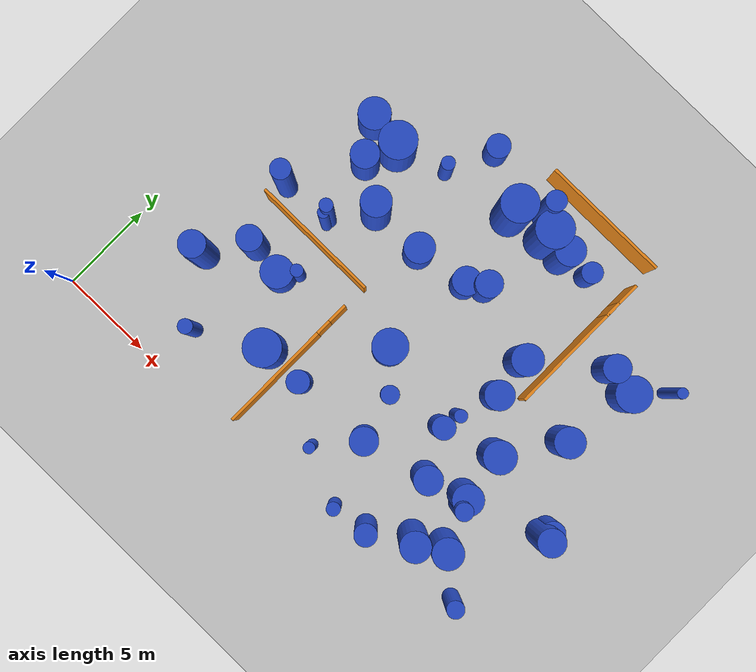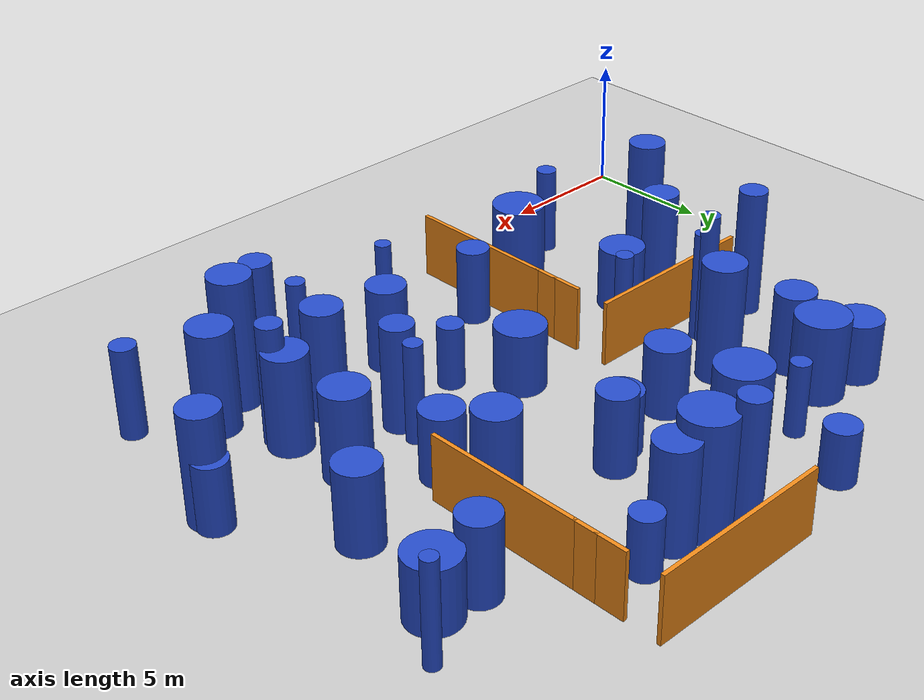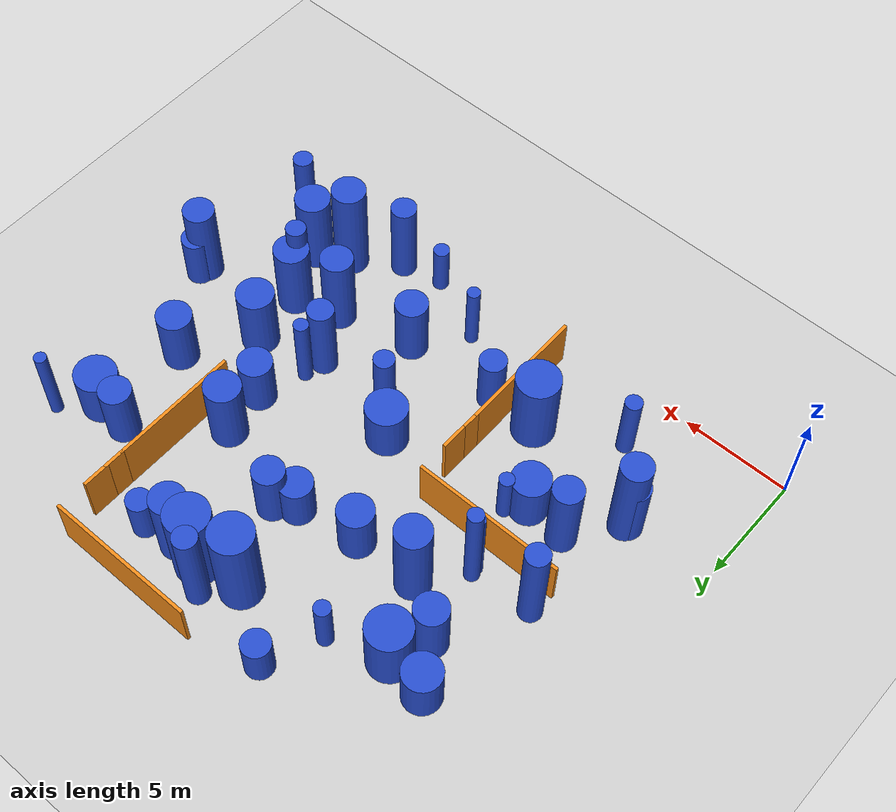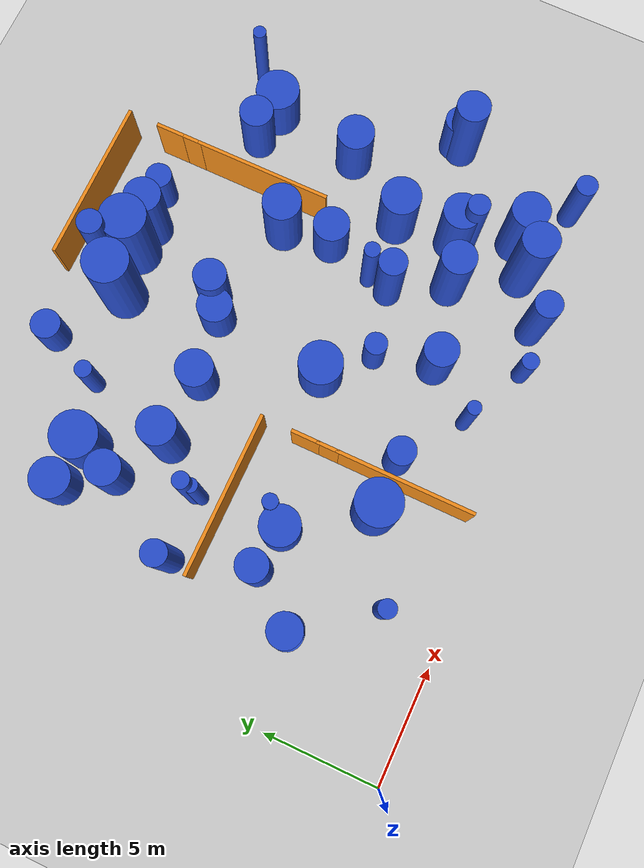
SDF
<sdf version="1.6">
 <world name="default">
  <model name="ground_plane">
   <static>1</static>
   <link name="link">
    <collision name="collision">
     <geometry><plane><normal>0 0 1</normal><size>100 100</size></plane></geometry>
     <surface><friction><ode><mu>100</mu><mu2>50</mu2></ode></friction></surface>
    </collision>
    <visual name="visual">
     <cast_shadows>0</cast_shadows>
     <geometry><plane><normal>0 0 1</normal><size>100 100</size></plane></geometry>
     <material>
      <script><uri>file://media/materials/scripts/gazebo.material</uri><name>Gazebo/Grey</name></script>
     </material>
    </visual>
   </link>
  </model>
  <model name="0">
   <static>0</static>
   <link name="link">
    <inertial>
     <mass>2</mass>
     <inertia><ixx>1.44488</ixx><ixy>0</ixy><ixz>0</ixz><iyy>1.44488</iyy><iyz>0</iyz><izz>0.600062</izz></inertia>
    </inertial>
    <collision name="collision">
     <geometry><cylinder><length>2.6209</length><radius>0.774637</radius></cylinder></geometry>
     <surface><contact><collide_without_contact>1</collide_without_contact></contact></surface>
    </collision>
    <visual name="visual">
     <geometry><cylinder><length>2.6209</length><radius>0.774637</radius></cylinder></geometry>
     <material>
      <script><uri>file://media/materials/scripts/gazebo.material</uri><name>Gazebo/Blue</name></script>
     </material>
    </visual>
    <gravity>0</gravity>
   </link>
   <pose>19.6803 11.0786 1.31045 0 -0 0</pose>
  </model>
  <model name="5">
   <static>0</static>
   <link name="link">
    <inertial>
     <mass>2</mass>
     <inertia><ixx>1.15559</ixx><ixy>0</ixy><ixz>0</ixz><iyy>1.15559</iyy><iyz>0</iyz><izz>0.571928</izz></inertia>
    </inertial>
    <collision name="collision">
     <geometry><cylinder><length>2.28424</length><radius>0.756259</radius></cylinder></geometry>
     <surface><contact><collide_without_contact>1</collide_without_contact></contact></surface>
    </collision>
    <visual name="visual">
     <geometry><cylinder><length>2.28424</length><radius>0.756259</radius></cylinder></geometry>
     <material>
      <script><uri>file://media/materials/scripts/gazebo.material</uri><name>Gazebo/Blue</name></script>
     </material>
    </visual>
    <gravity>0</gravity>
   </link>
   <pose>14.5568 14.0318 1.14212 0 -0 0</pose>
  </model>
  <model name="20">
   <static>0</static>
   <link name="link">
    <inertial>
     <mass>2</mass>
     <inertia>
      <ixx>0.985313</ixx>
      <ixy>0</ixy>
      <ixz>0</ixz>
      <iyy>0.985313</iyy>
      <iyz>0</iyz>
      <izz>0.312388</izz>
     </inertia>
    </inertial>
    <collision name="collision">
     <geometry><cylinder><length>2.23041</length><radius>0.558917</radius></cylinder></geometry>
     <surface><contact><collide_without_contact>1</collide_without_contact></contact></surface>
    </collision>
    <visual name="visual">
     <geometry><cylinder><length>2.23041</length><radius>0.558917</radius></cylinder></geometry>
     <material>
      <script><uri>file://media/materials/scripts/gazebo.material</uri><name>Gazebo/Blue</name></script>
     </material>
    </visual>
    <gravity>0</gravity>
   </link>
   <pose>18.7341 18.7242 1.1152 0 -0 0</pose>
  </model>
  <model name="23">
   <static>0</static>
   <link name="link">
    <inertial>
     <mass>2</mass>
     <inertia><ixx>2.07027</ixx><ixy>0</ixy><ixz>0</ixz><iyy>2.07027</iyy><iyz>0</iyz><izz>0.208934</izz></inertia>
    </inertial>
    <collision name="collision">
     <geometry><cylinder><length>3.43436</length><radius>0.457093</radius></cylinder></geometry>
     <surface><contact><collide_without_contact>1</collide_without_contact></contact></surface>
    </collision>
    <visual name="visual">
     <geometry><cylinder><length>3.43436</length><radius>0.457093</radius></cylinder></geometry>
     <material>
      <script><uri>file://media/materials/scripts/gazebo.material</uri><name>Gazebo/Blue</name></script>
     </material>
    </visual>
    <gravity>0</gravity>
   </link>
   <pose>25.3111 2.1227 1.71718 0 -0 0</pose>
  </model>
  <model name="24">
   <static>0</static>
   <link name="link">
    <inertial>
     <mass>2</mass>
     <inertia><ixx>1.15813</ixx><ixy>0</ixy><ixz>0</ixz><iyy>1.15813</iyy><iyz>0</iyz><izz>0.112947</izz></inertia>
    </inertial>
    <collision name="collision">
     <geometry><cylinder><length>2.57098</length><radius>0.336075</radius></cylinder></geometry>
     <surface><contact><collide_without_contact>1</collide_without_contact></contact></surface>
    </collision>
    <visual name="visual">
     <geometry><cylinder><length>2.57098</length><radius>0.336075</radius></cylinder></geometry>
     <material>
      <script><uri>file://media/materials/scripts/gazebo.material</uri><name>Gazebo/Blue</name></script>
     </material>
    </visual>
    <gravity>0</gravity>
   </link>
   <pose>8.17971 8.45153 1.28549 0 -0 0</pose>
  </model>
  <model name="43">
   <static>0</static>
   <link name="link">
    <inertial>
     <mass>2</mass>
     <inertia><ixx>2.22072</ixx><ixy>0</ixy><ixz>0</ixz><iyy>2.22072</iyy><iyz>0</iyz><izz>0.71958</izz></inertia>
    </inertial>
    <collision name="collision">
     <geometry><cylinder><length>3.3415</length><radius>0.84828</radius></cylinder></geometry>
     <surface><contact><collide_without_contact>1</collide_without_contact></contact></surface>
    </collision>
    <visual name="visual">
     <geometry><cylinder><length>3.3415</length><radius>0.84828</radius></cylinder></geometry>
     <material>
      <script><uri>file://media/materials/scripts/gazebo.material</uri><name>Gazebo/Blue</name></script>
     </material>
    </visual>
    <gravity>0</gravity>
   </link>
   <pose>21.7391 8.87798 1.67075 0 -0 0</pose>
  </model>
  <model name="44">
   <static>0</static>
   <link name="link">
    <inertial>
     <mass>2</mass>
     <inertia>
      <ixx>0.938137</ixx>
      <ixy>0</ixy>
      <ixz>0</ixz>
      <iyy>0.938137</iyy>
      <iyz>0</iyz>
      <izz>0.405193</izz>
     </inertia>
    </inertial>
    <collision name="collision">
     <geometry><cylinder><length>2.10077</length><radius>0.636547</radius></cylinder></geometry>
     <surface><contact><collide_without_contact>1</collide_without_contact></contact></surface>
    </collision>
    <visual name="visual">
     <geometry><cylinder><length>2.10077</length><radius>0.636547</radius></cylinder></geometry>
     <material>
      <script><uri>file://media/materials/scripts/gazebo.material</uri><name>Gazebo/Blue</name></script>
     </material>
    </visual>
    <gravity>0</gravity>
   </link>
   <pose>10.9429 20.0317 1.05039 0 -0 0</pose>
  </model>
  <model name="47">
   <static>0</static>
   <link name="link">
    <inertial>
     <mass>2</mass>
     <inertia><ixx>3.1155</ixx><ixy>0</ixy><ixz>0</ixz><iyy>3.1155</iyy><iyz>0</iyz><izz>0.511303</izz></inertia>
    </inertial>
    <collision name="collision">
     <geometry><cylinder><length>4.14235</length><radius>0.715055</radius></cylinder></geometry>
     <surface><contact><collide_without_contact>1</collide_without_contact></contact></surface>
    </collision>
    <visual name="visual">
     <geometry><cylinder><length>4.14235</length><radius>0.715055</radius></cylinder></geometry>
     <material>
      <script><uri>file://media/materials/scripts/gazebo.material</uri><name>Gazebo/Blue</name></script>
     </material>
    </visual>
    <gravity>0</gravity>
   </link>
   <pose>26.2492 7.67174 2.07118 0 -0 0</pose>
  </model>
  <model name="48">
   <static>0</static>
   <link name="link">
    <inertial>
     <mass>2</mass>
     <inertia><ixx>2.00723</ixx><ixy>0</ixy><ixz>0</ixz><iyy>2.00723</iyy><iyz>0</iyz><izz>0.44952</izz></inertia>
    </inertial>
    <collision name="collision">
     <geometry><cylinder><length>3.27029</length><radius>0.670462</radius></cylinder></geometry>
     <surface><contact><collide_without_contact>1</collide_without_contact></contact></surface>
    </collision>
    <visual name="visual">
     <geometry><cylinder><length>3.27029</length><radius>0.670462</radius></cylinder></geometry>
     <material>
      <script><uri>file://media/materials/scripts/gazebo.material</uri><name>Gazebo/Blue</name></script>
     </material>
    </visual>
    <gravity>0</gravity>
   </link>
   <pose>3.91397 5.71334 1.63514 0 -0 0</pose>
  </model>
  <model name="50">
   <static>0</static>
   <link name="link">
    <inertial>
     <mass>2</mass>
     <inertia><ixx>4.36449</ixx><ixy>0</ixy><ixz>0</ixz><iyy>4.36449</iyy><iyz>0</iyz><izz>0.596492</izz></inertia>
    </inertial>
    <collision name="collision">
     <geometry><cylinder><length>4.93938</length><radius>0.772329</radius></cylinder></geometry>
     <surface><contact><collide_without_contact>1</collide_without_contact></contact></surface>
    </collision>
    <visual name="visual">
     <geometry><cylinder><length>4.93938</length><radius>0.772329</radius></cylinder></geometry>
     <material>
      <script><uri>file://media/materials/scripts/gazebo.material</uri><name>Gazebo/Blue</name></script>
     </material>
    </visual>
    <gravity>0</gravity>
   </link>
   <pose>21.6401 3.0206 2.46969 0 -0 0</pose>
  </model>
  <model name="53">
   <static>0</static>
   <link name="link">
    <inertial>
     <mass>2</mass>
     <inertia><ixx>4.1614</ixx><ixy>0</ixy><ixz>0</ixz><iyy>4.1614</iyy><iyz>0</iyz><izz>0.483095</izz></inertia>
    </inertial>
    <collision name="collision">
     <geometry><cylinder><length>4.84965</length><radius>0.695051</radius></cylinder></geometry>
     <surface><contact><collide_without_contact>1</collide_without_contact></contact></surface>
    </collision>
    <visual name="visual">
     <geometry><cylinder><length>4.84965</length><radius>0.695051</radius></cylinder></geometry>
     <material>
      <script><uri>file://media/materials/scripts/gazebo.material</uri><name>Gazebo/Blue</name></script>
     </material>
    </visual>
    <gravity>0</gravity>
   </link>
   <pose>4.01536 5.78977 2.42483 0 -0 0</pose>
  </model>
  <model name="57">
   <static>0</static>
   <link name="link">
    <inertial>
     <mass>2</mass>
     <inertia><ixx>1.34468</ixx><ixy>0</ixy><ixz>0</ixz><iyy>1.34468</iyy><iyz>0</iyz><izz>0.738276</izz></inertia>
    </inertial>
    <collision name="collision">
     <geometry><cylinder><length>2.41935</length><radius>0.85923</radius></cylinder></geometry>
     <surface><contact><collide_without_contact>1</collide_without_contact></contact></surface>
    </collision>
    <visual name="visual">
     <geometry><cylinder><length>2.41935</length><radius>0.85923</radius></cylinder></geometry>
     <material>
      <script><uri>file://media/materials/scripts/gazebo.material</uri><name>Gazebo/Blue</name></script>
     </material>
    </visual>
    <gravity>0</gravity>
   </link>
   <pose>7.50045 7.71689 1.20967 0 -0 0</pose>
  </model>
  <model name="79">
   <static>0</static>
   <link name="link">
    <inertial>
     <mass>2</mass>
     <inertia><ixx>4.22648</ixx><ixy>0</ixy><ixz>0</ixz><iyy>4.22648</iyy><iyz>0</iyz><izz>0.120914</izz></inertia>
    </inertial>
    <collision name="collision">
     <geometry><cylinder><length>4.99961</length><radius>0.347727</radius></cylinder></geometry>
     <surface><contact><collide_without_contact>1</collide_without_contact></contact></surface>
    </collision>
    <visual name="visual">
     <geometry><cylinder><length>4.99961</length><radius>0.347727</radius></cylinder></geometry>
     <material>
      <script><uri>file://media/materials/scripts/gazebo.material</uri><name>Gazebo/Blue</name></script>
     </material>
    </visual>
    <gravity>0</gravity>
   </link>
   <pose>7.28848 11.5718 2.49981 0 -0 0</pose>
  </model>
  <model name="85">
   <static>0</static>
   <link name="link">
    <inertial>
     <mass>2</mass>
     <inertia><ixx>1.35185</ixx><ixy>0</ixy><ixz>0</ixz><iyy>1.35185</iyy><iyz>0</iyz><izz>0.134537</izz></inertia>
    </inertial>
    <collision name="collision">
     <geometry><cylinder><length>2.77624</length><radius>0.366793</radius></cylinder></geometry>
     <surface><contact><collide_without_contact>1</collide_without_contact></contact></surface>
    </collision>
    <visual name="visual">
     <geometry><cylinder><length>2.77624</length><radius>0.366793</radius></cylinder></geometry>
     <material>
      <script><uri>file://media/materials/scripts/gazebo.material</uri><name>Gazebo/Blue</name></script>
     </material>
    </visual>
    <gravity>0</gravity>
   </link>
   <pose>9.80805 17.5106 1.38812 0 -0 0</pose>
  </model>
  <model name="93">
   <static>0</static>
   <link name="link">
    <inertial>
     <mass>2</mass>
     <inertia><ixx>2.55649</ixx><ixy>0</ixy><ixz>0</ixz><iyy>2.55649</iyy><iyz>0</iyz><izz>0.635989</izz></inertia>
    </inertial>
    <collision name="collision">
     <geometry><cylinder><length>3.66483</length><radius>0.797489</radius></cylinder></geometry>
     <surface><contact><collide_without_contact>1</collide_without_contact></contact></surface>
    </collision>
    <visual name="visual">
     <geometry><cylinder><length>3.66483</length><radius>0.797489</radius></cylinder></geometry>
     <material>
      <script><uri>file://media/materials/scripts/gazebo.material</uri><name>Gazebo/Blue</name></script>
     </material>
    </visual>
    <gravity>0</gravity>
   </link>
   <pose>22.0357 6.31783 1.83241 0 -0 0</pose>
  </model>
  <model name="94">
   <static>0</static>
   <link name="link">
    <inertial>
     <mass>2</mass>
     <inertia><ixx>2.06501</ixx><ixy>0</ixy><ixz>0</ixz><iyy>2.06501</iyy><iyz>0</iyz><izz>0.98519</izz></inertia>
    </inertial>
    <collision name="collision">
     <geometry><cylinder><length>3.07156</length><radius>0.992567</radius></cylinder></geometry>
     <surface><contact><collide_without_contact>1</collide_without_contact></contact></surface>
    </collision>
    <visual name="visual">
     <geometry><cylinder><length>3.07156</length><radius>0.992567</radius></cylinder></geometry>
     <material>
      <script><uri>file://media/materials/scripts/gazebo.material</uri><name>Gazebo/Blue</name></script>
     </material>
    </visual>
    <gravity>0</gravity>
   </link>
   <pose>7.2758 16.5381 1.53578 0 -0 0</pose>
  </model>
  <model name="100">
   <static>0</static>
   <link name="link">
    <inertial>
     <mass>2</mass>
     <inertia><ixx>2.93556</ixx><ixy>0</ixy><ixz>0</ixz><iyy>2.93556</iyy><iyz>0</iyz><izz>0.950215</izz></inertia>
    </inertial>
    <collision name="collision">
     <geometry><cylinder><length>3.84223</length><radius>0.97479</radius></cylinder></geometry>
     <surface><contact><collide_without_contact>1</collide_without_contact></contact></surface>
    </collision>
    <visual name="visual">
     <geometry><cylinder><length>3.84223</length><radius>0.97479</radius></cylinder></geometry>
     <material>
      <script><uri>file://media/materials/scripts/gazebo.material</uri><name>Gazebo/Blue</name></script>
     </material>
    </visual>
    <gravity>0</gravity>
   </link>
   <pose>9.77484 4.57921 1.92111 0 -0 0</pose>
  </model>
  <model name="102">
   <static>0</static>
   <link name="link">
    <inertial>
     <mass>2</mass>
     <inertia><ixx>1.41837</ixx><ixy>0</ixy><ixz>0</ixz><iyy>1.41837</iyy><iyz>0</iyz><izz>0.884479</izz></inertia>
    </inertial>
    <collision name="collision">
     <geometry><cylinder><length>2.42008</length><radius>0.940468</radius></cylinder></geometry>
     <surface><contact><collide_without_contact>1</collide_without_contact></contact></surface>
    </collision>
    <visual name="visual">
     <geometry><cylinder><length>2.42008</length><radius>0.940468</radius></cylinder></geometry>
     <material>
      <script><uri>file://media/materials/scripts/gazebo.material</uri><name>Gazebo/Blue</name></script>
     </material>
    </visual>
    <gravity>0</gravity>
   </link>
   <pose>14.1371 9.01659 1.21004 0 -0 0</pose>
  </model>
  <model name="104">
   <static>0</static>
   <link name="link">
    <inertial>
     <mass>2</mass>
     <inertia><ixx>1.39177</ixx><ixy>0</ixy><ixz>0</ixz><iyy>1.39177</iyy><iyz>0</iyz><izz>0.899716</izz></inertia>
    </inertial>
    <collision name="collision">
     <geometry><cylinder><length>2.37729</length><radius>0.948534</radius></cylinder></geometry>
     <surface><contact><collide_without_contact>1</collide_without_contact></contact></surface>
    </collision>
    <visual name="visual">
     <geometry><cylinder><length>2.37729</length><radius>0.948534</radius></cylinder></geometry>
     <material>
      <script><uri>file://media/materials/scripts/gazebo.material</uri><name>Gazebo/Blue</name></script>
     </material>
    </visual>
    <gravity>0</gravity>
   </link>
   <pose>24.4132 15.8053 1.18864 0 -0 0</pose>
  </model>
  <model name="108">
   <static>0</static>
   <link name="link">
    <inertial>
     <mass>2</mass>
     <inertia><ixx>1.98997</ixx><ixy>0</ixy><ixz>0</ixz><iyy>1.98997</iyy><iyz>0</iyz><izz>0.149514</izz></inertia>
    </inertial>
    <collision name="collision">
     <geometry><cylinder><length>3.38988</length><radius>0.38667</radius></cylinder></geometry>
     <surface><contact><collide_without_contact>1</collide_without_contact></contact></surface>
    </collision>
    <visual name="visual">
     <geometry><cylinder><length>3.38988</length><radius>0.38667</radius></cylinder></geometry>
     <material>
      <script><uri>file://media/materials/scripts/gazebo.material</uri><name>Gazebo/Blue</name></script>
     </material>
    </visual>
    <gravity>0</gravity>
   </link>
   <pose>6.31891 2.67076 1.69494 0 -0 0</pose>
  </model>
  <model name="109">
   <static>0</static>
   <link name="link">
    <inertial>
     <mass>2</mass>
     <inertia><ixx>1.81505</ixx><ixy>0</ixy><ixz>0</ixz><iyy>1.81505</iyy><iyz>0</iyz><izz>0.637128</izz></inertia>
    </inertial>
    <collision name="collision">
     <geometry><cylinder><length>2.99649</length><radius>0.798203</radius></cylinder></geometry>
     <surface><contact><collide_without_contact>1</collide_without_contact></contact></surface>
    </collision>
    <visual name="visual">
     <geometry><cylinder><length>2.99649</length><radius>0.798203</radius></cylinder></geometry>
     <material>
      <script><uri>file://media/materials/scripts/gazebo.material</uri><name>Gazebo/Blue</name></script>
     </material>
    </visual>
    <gravity>0</gravity>
   </link>
   <pose>23.7206 11.8082 1.49824 0 -0 0</pose>
  </model>
  <model name="111">
   <static>0</static>
   <link name="link">
    <inertial>
     <mass>2</mass>
     <inertia><ixx>1.74581</ixx><ixy>0</ixy><ixz>0</ixz><iyy>1.74581</iyy><iyz>0</iyz><izz>0.527772</izz></inertia>
    </inertial>
    <collision name="collision">
     <geometry><cylinder><length>2.98187</length><radius>0.726479</radius></cylinder></geometry>
     <surface><contact><collide_without_contact>1</collide_without_contact></contact></surface>
    </collision>
    <visual name="visual">
     <geometry><cylinder><length>2.98187</length><radius>0.726479</radius></cylinder></geometry>
     <material>
      <script><uri>file://media/materials/scripts/gazebo.material</uri><name>Gazebo/Blue</name></script>
     </material>
    </visual>
    <gravity>0</gravity>
   </link>
   <pose>22.8404 16.0415 1.49093 0 -0 0</pose>
  </model>
  <model name="117">
   <static>0</static>
   <link name="link">
    <inertial>
     <mass>2</mass>
     <inertia><ixx>3.02417</ixx><ixy>0</ixy><ixz>0</ixz><iyy>3.02417</iyy><iyz>0</iyz><izz>0.335481</izz></inertia>
    </inertial>
    <collision name="collision">
     <geometry><cylinder><length>4.13988</length><radius>0.579207</radius></cylinder></geometry>
     <surface><contact><collide_without_contact>1</collide_without_contact></contact></surface>
    </collision>
    <visual name="visual">
     <geometry><cylinder><length>4.13988</length><radius>0.579207</radius></cylinder></geometry>
     <material>
      <script><uri>file://media/materials/scripts/gazebo.material</uri><name>Gazebo/Blue</name></script>
     </material>
    </visual>
    <gravity>0</gravity>
   </link>
   <pose>19.6363 1.69647 2.06994 0 -0 0</pose>
  </model>
  <model name="118">
   <static>0</static>
   <link name="link">
    <inertial>
     <mass>2</mass>
     <inertia><ixx>3.62814</ixx><ixy>0</ixy><ixz>0</ixz><iyy>3.62814</iyy><iyz>0</iyz><izz>0.622042</izz></inertia>
    </inertial>
    <collision name="collision">
     <geometry><cylinder><length>4.46124</length><radius>0.788696</radius></cylinder></geometry>
     <surface><contact><collide_without_contact>1</collide_without_contact></contact></surface>
    </collision>
    <visual name="visual">
     <geometry><cylinder><length>4.46124</length><radius>0.788696</radius></cylinder></geometry>
     <material>
      <script><uri>file://media/materials/scripts/gazebo.material</uri><name>Gazebo/Blue</name></script>
     </material>
    </visual>
    <gravity>0</gravity>
   </link>
   <pose>8.79438 13.4327 2.23062 0 -0 0</pose>
  </model>
  <model name="127">
   <static>0</static>
   <link name="link">
    <inertial>
     <mass>2</mass>
     <inertia><ixx>1.09592</ixx><ixy>0</ixy><ixz>0</ixz><iyy>1.09592</iyy><iyz>0</iyz><izz>0.235453</izz></inertia>
    </inertial>
    <collision name="collision">
     <geometry><cylinder><length>2.42263</length><radius>0.485235</radius></cylinder></geometry>
     <surface><contact><collide_without_contact>1</collide_without_contact></contact></surface>
    </collision>
    <visual name="visual">
     <geometry><cylinder><length>2.42263</length><radius>0.485235</radius></cylinder></geometry>
     <material>
      <script><uri>file://media/materials/scripts/gazebo.material</uri><name>Gazebo/Blue</name></script>
     </material>
    </visual>
    <gravity>0</gravity>
   </link>
   <pose>15.8013 7.30906 1.21132 0 -0 0</pose>
  </model>
  <model name="132">
   <static>0</static>
   <link name="link">
    <inertial>
     <mass>2</mass>
     <inertia><ixx>1.84648</ixx><ixy>0</ixy><ixz>0</ixz><iyy>1.84648</iyy><iyz>0</iyz><izz>0.561534</izz></inertia>
    </inertial>
    <collision name="collision">
     <geometry><cylinder><length>3.06501</length><radius>0.749356</radius></cylinder></geometry>
     <surface><contact><collide_without_contact>1</collide_without_contact></contact></surface>
    </collision>
    <visual name="visual">
     <geometry><cylinder><length>3.06501</length><radius>0.749356</radius></cylinder></geometry>
     <material>
      <script><uri>file://media/materials/scripts/gazebo.material</uri><name>Gazebo/Blue</name></script>
     </material>
    </visual>
    <gravity>0</gravity>
   </link>
   <pose>6.58976 14.8962 1.53251 0 -0 0</pose>
  </model>
  <model name="140">
   <static>0</static>
   <link name="link">
    <inertial>
     <mass>2</mass>
     <inertia><ixx>2.38496</ixx><ixy>0</ixy><ixz>0</ixz><iyy>2.38496</iyy><iyz>0</iyz><izz>0.113818</izz></inertia>
    </inertial>
    <collision name="collision">
     <geometry><cylinder><length>3.73742</length><radius>0.33737</radius></cylinder></geometry>
     <surface><contact><collide_without_contact>1</collide_without_contact></contact></surface>
    </collision>
    <visual name="visual">
     <geometry><cylinder><length>3.73742</length><radius>0.33737</radius></cylinder></geometry>
     <material>
      <script><uri>file://media/materials/scripts/gazebo.material</uri><name>Gazebo/Blue</name></script>
     </material>
    </visual>
    <gravity>0</gravity>
   </link>
   <pose>18.9409 8.96356 1.86871 0 -0 0</pose>
  </model>
  <model name="154">
   <static>0</static>
   <link name="link">
    <inertial>
     <mass>2</mass>
     <inertia>
      <ixx>1.91362</ixx>
      <ixy>0</ixy>
      <ixz>0</ixz>
      <iyy>1.91362</iyy>
      <iyz>0</iyz>
      <izz>0.0902472</izz>
     </inertia>
    </inertial>
    <collision name="collision">
     <geometry><cylinder><length>3.34828</length><radius>0.300412</radius></cylinder></geometry>
     <surface><contact><collide_without_contact>1</collide_without_contact></contact></surface>
    </collision>
    <visual name="visual">
     <geometry><cylinder><length>3.34828</length><radius>0.300412</radius></cylinder></geometry>
     <material>
      <script><uri>file://media/materials/scripts/gazebo.material</uri><name>Gazebo/Blue</name></script>
     </material>
    </visual>
    <gravity>0</gravity>
   </link>
   <pose>14.7819 2.70133 1.67414 0 -0 0</pose>
  </model>
  <model name="156">
   <static>0</static>
   <link name="link">
    <inertial>
     <mass>2</mass>
     <inertia><ixx>2.78994</ixx><ixy>0</ixy><ixz>0</ixz><iyy>2.78994</iyy><iyz>0</iyz><izz>0.355197</izz></inertia>
    </inertial>
    <collision name="collision">
     <geometry><cylinder><length>3.95905</length><radius>0.595984</radius></cylinder></geometry>
     <surface><contact><collide_without_contact>1</collide_without_contact></contact></surface>
    </collision>
    <visual name="visual">
     <geometry><cylinder><length>3.95905</length><radius>0.595984</radius></cylinder></geometry>
     <material>
      <script><uri>file://media/materials/scripts/gazebo.material</uri><name>Gazebo/Blue</name></script>
     </material>
    </visual>
    <gravity>0</gravity>
   </link>
   <pose>18.7412 7.97413 1.97952 0 -0 0</pose>
  </model>
  <model name="158">
   <static>0</static>
   <link name="link">
    <inertial>
     <mass>2</mass>
     <inertia>
      <ixx>2.98725</ixx>
      <ixy>0</ixy>
      <ixz>0</ixz>
      <iyy>2.98725</iyy>
      <iyz>0</iyz>
      <izz>0.0869814</izz>
     </inertia>
    </inertial>
    <collision name="collision">
     <geometry><cylinder><length>4.20268</length><radius>0.294926</radius></cylinder></geometry>
     <surface><contact><collide_without_contact>1</collide_without_contact></contact></surface>
    </collision>
    <visual name="visual">
     <geometry><cylinder><length>4.20268</length><radius>0.294926</radius></cylinder></geometry>
     <material>
      <script><uri>file://media/materials/scripts/gazebo.material</uri><name>Gazebo/Blue</name></script>
     </material>
    </visual>
    <gravity>0</gravity>
   </link>
   <pose>7.3226 11.294 2.10134 0 -0 0</pose>
  </model>
  <model name="171">
   <static>0</static>
   <link name="link">
    <inertial>
     <mass>2</mass>
     <inertia><ixx>1.15098</ixx><ixy>0</ixy><ixz>0</ixz><iyy>1.15098</iyy><iyz>0</iyz><izz>0.170705</izz></inertia>
    </inertial>
    <collision name="collision">
     <geometry><cylinder><length>2.52859</length><radius>0.413164</radius></cylinder></geometry>
     <surface><contact><collide_without_contact>1</collide_without_contact></contact></surface>
    </collision>
    <visual name="visual">
     <geometry><cylinder><length>2.52859</length><radius>0.413164</radius></cylinder></geometry>
     <material>
      <script><uri>file://media/materials/scripts/gazebo.material</uri><name>Gazebo/Blue</name></script>
     </material>
    </visual>
    <gravity>0</gravity>
   </link>
   <pose>24.0099 11.86 1.2643 0 -0 0</pose>
  </model>
  <model name="172">
   <static>0</static>
   <link name="link">
    <inertial>
     <mass>2</mass>
     <inertia><ixx>1.05244</ixx><ixy>0</ixy><ixz>0</ixz><iyy>1.05244</iyy><iyz>0</iyz><izz>0.132693</izz></inertia>
    </inertial>
    <collision name="collision">
     <geometry><cylinder><length>2.4324</length><radius>0.36427</radius></cylinder></geometry>
     <surface><contact><collide_without_contact>1</collide_without_contact></contact></surface>
    </collision>
    <visual name="visual">
     <geometry><cylinder><length>2.4324</length><radius>0.36427</radius></cylinder></geometry>
     <material>
      <script><uri>file://media/materials/scripts/gazebo.material</uri><name>Gazebo/Blue</name></script>
     </material>
    </visual>
    <gravity>0</gravity>
   </link>
   <pose>17.7532 1.32576 1.2162 0 -0 0</pose>
  </model>
  <model name="174">
   <static>0</static>
   <link name="link">
    <inertial>
     <mass>2</mass>
     <inertia><ixx>4.14774</ixx><ixy>0</ixy><ixz>0</ixz><iyy>4.14774</iyy><iyz>0</iyz><izz>0.279668</izz></inertia>
    </inertial>
    <collision name="collision">
     <geometry><cylinder><length>4.90382</length><radius>0.528837</radius></cylinder></geometry>
     <surface><contact><collide_without_contact>1</collide_without_contact></contact></surface>
    </collision>
    <visual name="visual">
     <geometry><cylinder><length>4.90382</length><radius>0.528837</radius></cylinder></geometry>
     <material>
      <script><uri>file://media/materials/scripts/gazebo.material</uri><name>Gazebo/Blue</name></script>
     </material>
    </visual>
    <gravity>0</gravity>
   </link>
   <pose>4.50701 11.2825 2.45191 0 -0 0</pose>
  </model>
  <model name="177">
   <static>0</static>
   <link name="link">
    <inertial>
     <mass>2</mass>
     <inertia><ixx>2.74835</ixx><ixy>0</ixy><ixz>0</ixz><iyy>2.74835</iyy><iyz>0</iyz><izz>0.609187</izz></inertia>
    </inertial>
    <collision name="collision">
     <geometry><cylinder><length>3.82917</length><radius>0.780504</radius></cylinder></geometry>
     <surface><contact><collide_without_contact>1</collide_without_contact></contact></surface>
    </collision>
    <visual name="visual">
     <geometry><cylinder><length>3.82917</length><radius>0.780504</radius></cylinder></geometry>
     <material>
      <script><uri>file://media/materials/scripts/gazebo.material</uri><name>Gazebo/Blue</name></script>
     </material>
    </visual>
    <gravity>0</gravity>
   </link>
   <pose>17.1312 18.4067 1.91459 0 -0 0</pose>
  </model>
  <model name="181">
   <static>0</static>
   <link name="link">
    <inertial>
     <mass>2</mass>
     <inertia><ixx>1.25919</ixx><ixy>0</ixy><ixz>0</ixz><iyy>1.25919</iyy><iyz>0</iyz><izz>0.729113</izz></inertia>
    </inertial>
    <collision name="collision">
     <geometry><cylinder><length>2.31685</length><radius>0.853881</radius></cylinder></geometry>
     <surface><contact><collide_without_contact>1</collide_without_contact></contact></surface>
    </collision>
    <visual name="visual">
     <geometry><cylinder><length>2.31685</length><radius>0.853881</radius></cylinder></geometry>
     <material>
      <script><uri>file://media/materials/scripts/gazebo.material</uri><name>Gazebo/Blue</name></script>
     </material>
    </visual>
    <gravity>0</gravity>
   </link>
   <pose>5.38353 16.8018 1.15842 0 -0 0</pose>
  </model>
  <model name="182">
   <static>0</static>
   <link name="link">
    <inertial>
     <mass>2</mass>
     <inertia><ixx>1.26185</ixx><ixy>0</ixy><ixz>0</ixz><iyy>1.26185</iyy><iyz>0</iyz><izz>0.388588</izz></inertia>
    </inertial>
    <collision name="collision">
     <geometry><cylinder><length>2.53087</length><radius>0.623369</radius></cylinder></geometry>
     <surface><contact><collide_without_contact>1</collide_without_contact></contact></surface>
    </collision>
    <visual name="visual">
     <geometry><cylinder><length>2.53087</length><radius>0.623369</radius></cylinder></geometry>
     <material>
      <script><uri>file://media/materials/scripts/gazebo.material</uri><name>Gazebo/Blue</name></script>
     </material>
    </visual>
    <gravity>0</gravity>
   </link>
   <pose>26.319 8.06985 1.26544 0 -0 0</pose>
  </model>
  <model name="184">
   <static>0</static>
   <link name="link">
    <inertial>
     <mass>2</mass>
     <inertia><ixx>3.46192</ixx><ixy>0</ixy><ixz>0</ixz><iyy>3.46192</iyy><iyz>0</iyz><izz>0.212884</izz></inertia>
    </inertial>
    <collision name="collision">
     <geometry><cylinder><length>4.48696</length><radius>0.461393</radius></cylinder></geometry>
     <surface><contact><collide_without_contact>1</collide_without_contact></contact></surface>
    </collision>
    <visual name="visual">
     <geometry><cylinder><length>4.48696</length><radius>0.461393</radius></cylinder></geometry>
     <material>
      <script><uri>file://media/materials/scripts/gazebo.material</uri><name>Gazebo/Blue</name></script>
     </material>
    </visual>
    <gravity>0</gravity>
   </link>
   <pose>22.1808 5.79471 2.24348 0 -0 0</pose>
  </model>
  <model name="186">
   <static>0</static>
   <link name="link">
    <inertial>
     <mass>2</mass>
     <inertia><ixx>1.49255</ixx><ixy>0</ixy><ixz>0</ixz><iyy>1.49255</iyy><iyz>0</iyz><izz>0.644241</izz></inertia>
    </inertial>
    <collision name="collision">
     <geometry><cylinder><length>2.65002</length><radius>0.802646</radius></cylinder></geometry>
     <surface><contact><collide_without_contact>1</collide_without_contact></contact></surface>
    </collision>
    <visual name="visual">
     <geometry><cylinder><length>2.65002</length><radius>0.802646</radius></cylinder></geometry>
     <material>
      <script><uri>file://media/materials/scripts/gazebo.material</uri><name>Gazebo/Blue</name></script>
     </material>
    </visual>
    <gravity>0</gravity>
   </link>
   <pose>11.7399 13.5246 1.32501 0 -0 0</pose>
  </model>
  <model name="187">
   <static>0</static>
   <link name="link">
    <inertial>
     <mass>2</mass>
     <inertia><ixx>4.23987</ixx><ixy>0</ixy><ixz>0</ixz><iyy>4.23987</iyy><iyz>0</iyz><izz>0.923201</izz></inertia>
    </inertial>
    <collision name="collision">
     <geometry><cylinder><length>4.76126</length><radius>0.960834</radius></cylinder></geometry>
     <surface><contact><collide_without_contact>1</collide_without_contact></contact></surface>
    </collision>
    <visual name="visual">
     <geometry><cylinder><length>4.76126</length><radius>0.960834</radius></cylinder></geometry>
     <material>
      <script><uri>file://media/materials/scripts/gazebo.material</uri><name>Gazebo/Blue</name></script>
     </material>
    </visual>
    <gravity>0</gravity>
   </link>
   <pose>13.7917 18.1429 2.38063 0 -0 0</pose>
  </model>
  <model name="190">
   <static>0</static>
   <link name="link">
    <inertial>
     <mass>2</mass>
     <inertia><ixx>3.58166</ixx><ixy>0</ixy><ixz>0</ixz><iyy>3.58166</iyy><iyz>0</iyz><izz>0.960053</izz></inertia>
    </inertial>
    <collision name="collision">
     <geometry><cylinder><length>4.31391</length><radius>0.979823</radius></cylinder></geometry>
     <surface><contact><collide_without_contact>1</collide_without_contact></contact></surface>
    </collision>
    <visual name="visual">
     <geometry><cylinder><length>4.31391</length><radius>0.979823</radius></cylinder></geometry>
     <material>
      <script><uri>file://media/materials/scripts/gazebo.material</uri><name>Gazebo/Blue</name></script>
     </material>
    </visual>
    <gravity>0</gravity>
   </link>
   <pose>15.8474 18.5398 2.15695 0 -0 0</pose>
  </model>
  <model name="192">
   <static>0</static>
   <link name="link">
    <inertial>
     <mass>2</mass>
     <inertia><ixx>1.96292</ixx><ixy>0</ixy><ixz>0</ixz><iyy>1.96292</iyy><iyz>0</iyz><izz>0.540274</izz></inertia>
    </inertial>
    <collision name="collision">
     <geometry><cylinder><length>3.18695</length><radius>0.735034</radius></cylinder></geometry>
     <surface><contact><collide_without_contact>1</collide_without_contact></contact></surface>
    </collision>
    <visual name="visual">
     <geometry><cylinder><length>3.18695</length><radius>0.735034</radius></cylinder></geometry>
     <material>
      <script><uri>file://media/materials/scripts/gazebo.material</uri><name>Gazebo/Blue</name></script>
     </material>
    </visual>
    <gravity>0</gravity>
   </link>
   <pose>16.4698 4.78691 1.59348 0 -0 0</pose>
  </model>
  <model name="196">
   <static>0</static>
   <link name="link">
    <inertial>
     <mass>2</mass>
     <inertia><ixx>3.13099</ixx><ixy>0</ixy><ixz>0</ixz><iyy>3.13099</iyy><iyz>0</iyz><izz>0.543498</izz></inertia>
    </inertial>
    <collision name="collision">
     <geometry><cylinder><length>4.14191</length><radius>0.737223</radius></cylinder></geometry>
     <surface><contact><collide_without_contact>1</collide_without_contact></contact></surface>
    </collision>
    <visual name="visual">
     <geometry><cylinder><length>4.14191</length><radius>0.737223</radius></cylinder></geometry>
     <material>
      <script><uri>file://media/materials/scripts/gazebo.material</uri><name>Gazebo/Blue</name></script>
     </material>
    </visual>
    <gravity>0</gravity>
   </link>
   <pose>19.9572 5.65237 2.07096 0 -0 0</pose>
  </model>
  <model name="199">
   <static>0</static>
   <link name="link">
    <inertial>
     <mass>2</mass>
     <inertia><ixx>2.91291</ixx><ixy>0</ixy><ixz>0</ixz><iyy>2.91291</iyy><iyz>0</iyz><izz>0.448558</izz></inertia>
    </inertial>
    <collision name="collision">
     <geometry><cylinder><length>4.01644</length><radius>0.669745</radius></cylinder></geometry>
     <surface><contact><collide_without_contact>1</collide_without_contact></contact></surface>
    </collision>
    <visual name="visual">
     <geometry><cylinder><length>4.01644</length><radius>0.669745</radius></cylinder></geometry>
     <material>
      <script><uri>file://media/materials/scripts/gazebo.material</uri><name>Gazebo/Blue</name></script>
     </material>
    </visual>
    <gravity>0</gravity>
   </link>
   <pose>5.61738 7.92305 2.00822 0 -0 0</pose>
  </model>
  <model name="204">
   <static>0</static>
   <link name="link">
    <inertial>
     <mass>2</mass>
     <inertia><ixx>1.57546</ixx><ixy>0</ixy><ixz>0</ixz><iyy>1.57546</iyy><iyz>0</iyz><izz>0.365476</izz></inertia>
    </inertial>
    <collision name="collision">
     <geometry><cylinder><length>2.89073</length><radius>0.604546</radius></cylinder></geometry>
     <surface><contact><collide_without_contact>1</collide_without_contact></contact></surface>
    </collision>
    <visual name="visual">
     <geometry><cylinder><length>2.89073</length><radius>0.604546</radius></cylinder></geometry>
     <material>
      <script><uri>file://media/materials/scripts/gazebo.material</uri><name>Gazebo/Blue</name></script>
     </material>
    </visual>
    <gravity>0</gravity>
   </link>
   <pose>12.1209 4.58324 1.44537 0 -0 0</pose>
  </model>
  <model name="213">
   <static>0</static>
   <link name="link">
    <inertial>
     <mass>2</mass>
     <inertia><ixx>2.90427</ixx><ixy>0</ixy><ixz>0</ixz><iyy>2.90427</iyy><iyz>0</iyz><izz>0.642035</izz></inertia>
    </inertial>
    <collision name="collision">
     <geometry><cylinder><length>3.93695</length><radius>0.801271</radius></cylinder></geometry>
     <surface><contact><collide_without_contact>1</collide_without_contact></contact></surface>
    </collision>
    <visual name="visual">
     <geometry><cylinder><length>3.93695</length><radius>0.801271</radius></cylinder></geometry>
     <material>
      <script><uri>file://media/materials/scripts/gazebo.material</uri><name>Gazebo/Blue</name></script>
     </material>
    </visual>
    <gravity>0</gravity>
   </link>
   <pose>23.1116 3.80859 1.96847 0 -0 0</pose>
  </model>
  <model name="216">
   <static>0</static>
   <link name="link">
    <inertial>
     <mass>2</mass>
     <inertia><ixx>2.38927</ixx><ixy>0</ixy><ixz>0</ixz><iyy>2.38927</iyy><iyz>0</iyz><izz>0.670527</izz></inertia>
    </inertial>
    <collision name="collision">
     <geometry><cylinder><length>3.51056</length><radius>0.818857</radius></cylinder></geometry>
     <surface><contact><collide_without_contact>1</collide_without_contact></contact></surface>
    </collision>
    <visual name="visual">
     <geometry><cylinder><length>3.51056</length><radius>0.818857</radius></cylinder></geometry>
     <material>
      <script><uri>file://media/materials/scripts/gazebo.material</uri><name>Gazebo/Blue</name></script>
     </material>
    </visual>
    <gravity>0</gravity>
   </link>
   <pose>19.3676 13.1995 1.75528 0 -0 0</pose>
  </model>
  <model name="226">
   <static>0</static>
   <link name="link">
    <inertial>
     <mass>2</mass>
     <inertia><ixx>3.9982</ixx><ixy>0</ixy><ixz>0</ixz><iyy>3.9982</iyy><iyz>0</iyz><izz>0.280191</izz></inertia>
    </inertial>
    <collision name="collision">
     <geometry><cylinder><length>4.8113</length><radius>0.52933</radius></cylinder></geometry>
     <surface><contact><collide_without_contact>1</collide_without_contact></contact></surface>
    </collision>
    <visual name="visual">
     <geometry><cylinder><length>4.8113</length><radius>0.52933</radius></cylinder></geometry>
     <material>
      <script><uri>file://media/materials/scripts/gazebo.material</uri><name>Gazebo/Blue</name></script>
     </material>
    </visual>
    <gravity>0</gravity>
   </link>
   <pose>14.9426 19.43 2.40565 0 -0 0</pose>
  </model>
  <model name="230">
   <static>0</static>
   <link name="link">
    <inertial>
     <mass>2</mass>
     <inertia>
      <ixx>2.46786</ixx>
      <ixy>0</ixy>
      <ixz>0</ixz>
      <iyy>2.46786</iyy>
      <iyz>0</iyz>
      <izz>0.0789834</izz>
     </inertia>
    </inertial>
    <collision name="collision">
     <geometry><cylinder><length>3.8171</length><radius>0.28104</radius></cylinder></geometry>
     <surface><contact><collide_without_contact>1</collide_without_contact></contact></surface>
    </collision>
    <visual name="visual">
     <geometry><cylinder><length>3.8171</length><radius>0.28104</radius></cylinder></geometry>
     <material>
      <script><uri>file://media/materials/scripts/gazebo.material</uri><name>Gazebo/Blue</name></script>
     </material>
    </visual>
    <gravity>0</gravity>
   </link>
   <pose>25.7942 17.2502 1.90855 0 -0 0</pose>
  </model>
  <model name="235">
   <static>0</static>
   <link name="link">
    <inertial>
     <mass>2</mass>
     <inertia><ixx>1.18672</ixx><ixy>0</ixy><ixz>0</ixz><iyy>1.18672</iyy><iyz>0</iyz><izz>0.509115</izz></inertia>
    </inertial>
    <collision name="collision">
     <geometry><cylinder><length>2.36495</length><radius>0.713523</radius></cylinder></geometry>
     <surface><contact><collide_without_contact>1</collide_without_contact></contact></surface>
    </collision>
    <visual name="visual">
     <geometry><cylinder><length>2.36495</length><radius>0.713523</radius></cylinder></geometry>
     <material>
      <script><uri>file://media/materials/scripts/gazebo.material</uri><name>Gazebo/Blue</name></script>
     </material>
    </visual>
    <gravity>0</gravity>
   </link>
   <pose>21.7555 2.99197 1.18247 0 -0 0</pose>
  </model>
  <model name="241">
   <static>0</static>
   <link name="link">
    <inertial>
     <mass>2</mass>
     <inertia><ixx>1.73893</ixx><ixy>0</ixy><ixz>0</ixz><iyy>1.73893</iyy><iyz>0</iyz><izz>0.502721</izz></inertia>
    </inertial>
    <collision name="collision">
     <geometry><cylinder><length>2.98754</length><radius>0.709028</radius></cylinder></geometry>
     <surface><contact><collide_without_contact>1</collide_without_contact></contact></surface>
    </collision>
    <visual name="visual">
     <geometry><cylinder><length>2.98754</length><radius>0.709028</radius></cylinder></geometry>
     <material>
      <script><uri>file://media/materials/scripts/gazebo.material</uri><name>Gazebo/Blue</name></script>
     </material>
    </visual>
    <gravity>0</gravity>
   </link>
   <pose>15.4518 14.6152 1.49377 0 -0 0</pose>
  </model>
  <model name="wall_0_clone">
   <pose>7.68816 5.62857 0 0 -0 0</pose>
   <link name="Wall_10">
    <collision name="Wall_10_Collision">
     <geometry><box><size>1 0.15 2.5</size></box></geometry>
     <pose>0 0 1.25 0 -0 0</pose>
    </collision>
    <visual name="Wall_10_Visual">
     <pose>0 0 1.25 0 -0 0</pose>
     <geometry><box><size>1 0.15 2.5</size></box></geometry>
     <material>
      <script><uri>file://media/materials/scripts/gazebo.material</uri><name>Gazebo/Orange</name></script>
      <ambient>1 1 1 1</ambient>
     </material>
     <meta><layer>0</layer></meta>
    </visual>
    <pose>3.41104 1.67587 0 0 -0 -1.5708</pose>
   </link>
   <link name="Wall_11">
    <collision name="Wall_11_Collision">
     <geometry><box><size>6 0.15 2.5</size></box></geometry>
     <pose>0 0 1.25 0 -0 0</pose>
    </collision>
    <visual name="Wall_11_Visual">
     <pose>0 0 1.25 0 -0 0</pose>
     <geometry><box><size>6 0.15 2.5</size></box></geometry>
     <material>
      <script><uri>file://media/materials/scripts/gazebo.material</uri><name>Gazebo/Orange</name></script>
      <ambient>1 1 1 1</ambient>
     </material>
     <meta><layer>0</layer></meta>
    </visual>
    <pose>3.41104 -1.67413 0 0 -0 -1.5708</pose>
   </link>
   <link name="Wall_6">
    <collision name="Wall_6_Collision">
     <geometry><box><size>7 0.15 2.5</size></box></geometry>
     <pose>0 0 1.25 0 -0 0</pose>
    </collision>
    <visual name="Wall_6_Visual">
     <pose>0 0 1.25 0 -0 0</pose>
     <geometry><box><size>7 0.15 2.5</size></box></geometry>
     <material>
      <script><uri>file://media/materials/scripts/gazebo.material</uri><name>Gazebo/Orange</name></script>
      <ambient>1 1 1 1</ambient>
     </material>
     <meta><layer>0</layer></meta>
    </visual>
    <pose>-0 4.59914 0 0 -0 0</pose>
   </link>
   <link name="Wall_9">
    <collision name="Wall_9_Collision">
     <geometry><box><size>1.25 0.15 2.5</size></box></geometry>
     <pose>0 0 1.25 0 -0 0</pose>
    </collision>
    <visual name="Wall_9_Visual">
     <pose>0 0 1.25 0 -0 0</pose>
     <geometry><box><size>1.25 0.15 2.5</size></box></geometry>
     <material>
      <script><uri>file://media/materials/scripts/gazebo.material</uri><name>Gazebo/Orange</name></script>
      <ambient>1 1 1 1</ambient>
     </material>
     <meta><layer>0</layer></meta>
    </visual>
    <pose>3.41104 2.65087 0 0 -0 -1.5708</pose>
   </link>
   <static>1</static>
  </model>
  <model name="wall_0_clone_0">
   <pose>17.3087 16.47 0 0 -0 0</pose>
   <link name="Wall_10">
    <collision name="Wall_10_Collision">
     <geometry><box><size>1 0.15 2.5</size></box></geometry>
     <pose>0 0 1.25 0 -0 0</pose>
    </collision>
    <visual name="Wall_10_Visual">
     <pose>0 0 1.25 0 -0 0</pose>
     <geometry><box><size>1 0.15 2.5</size></box></geometry>
     <material>
      <script><uri>file://media/materials/scripts/gazebo.material</uri><name>Gazebo/Orange</name></script>
      <ambient>1 1 1 1</ambient>
     </material>
     <meta><layer>0</layer></meta>
    </visual>
    <pose>3.41104 1.67587 0 0 -0 -1.5708</pose>
   </link>
   <link name="Wall_11">
    <collision name="Wall_11_Collision">
     <geometry><box><size>6 0.15 2.5</size></box></geometry>
     <pose>0 0 1.25 0 -0 0</pose>
    </collision>
    <visual name="Wall_11_Visual">
     <pose>0 0 1.25 0 -0 0</pose>
     <geometry><box><size>6 0.15 2.5</size></box></geometry>
     <material>
      <script><uri>file://media/materials/scripts/gazebo.material</uri><name>Gazebo/Orange</name></script>
      <ambient>1 1 1 1</ambient>
     </material>
     <meta><layer>0</layer></meta>
    </visual>
    <pose>3.41104 -1.67413 0 0 -0 -1.5708</pose>
   </link>
   <link name="Wall_6">
    <collision name="Wall_6_Collision">
     <geometry><box><size>7 0.15 2.5</size></box></geometry>
     <pose>0 0 1.25 0 -0 0</pose>
    </collision>
    <visual name="Wall_6_Visual">
     <pose>0 0 1.25 0 -0 0</pose>
     <geometry><box><size>7 0.15 2.5</size></box></geometry>
     <material>
      <script><uri>file://media/materials/scripts/gazebo.material</uri><name>Gazebo/Orange</name></script>
      <ambient>1 1 1 1</ambient>
     </material>
     <meta><layer>0</layer></meta>
    </visual>
    <pose>-0 4.59914 0 0 -0 0</pose>
   </link>
   <link name="Wall_9">
    <collision name="Wall_9_Collision">
     <geometry><box><size>1.25 0.15 2.5</size></box></geometry>
     <pose>0 0 1.25 0 -0 0</pose>
    </collision>
    <visual name="Wall_9_Visual">
     <pose>0 0 1.25 0 -0 0</pose>
     <geometry><box><size>1.25 0.15 2.5</size></box></geometry>
     <material>
      <script><uri>file://media/materials/scripts/gazebo.material</uri><name>Gazebo/Orange</name></script>
      <ambient>1 1 1 1</ambient>
     </material>
     <meta><layer>0</layer></meta>
    </visual>
    <pose>3.41104 2.65087 0 0 -0 -1.5708</pose>
   </link>
   <static>1</static>
  </model>
 </world>
</sdf>
